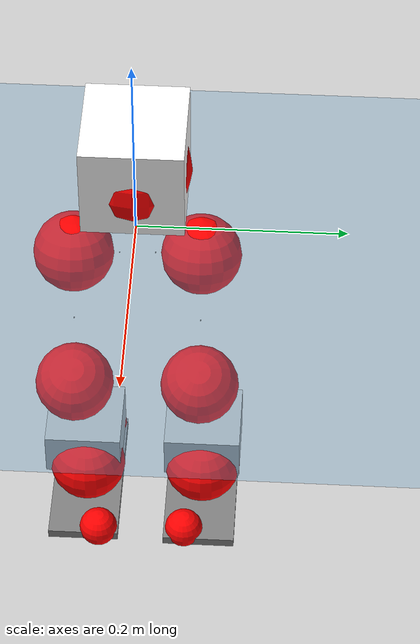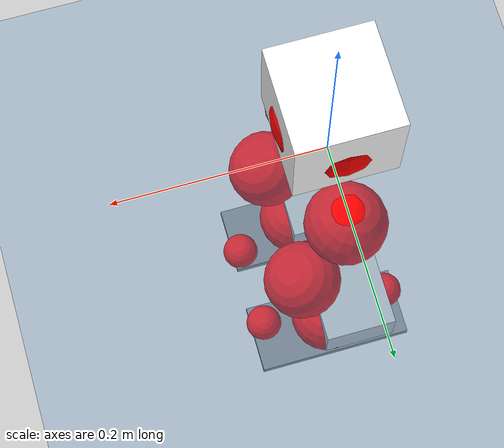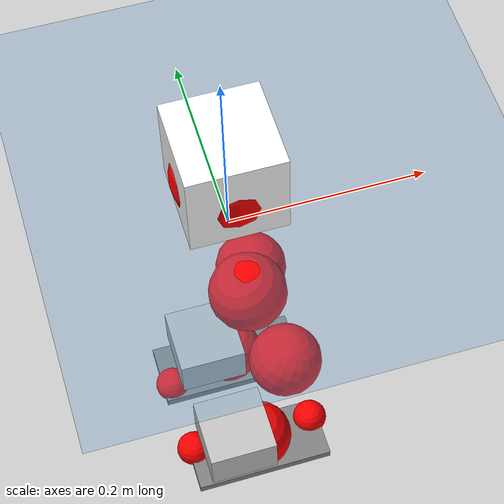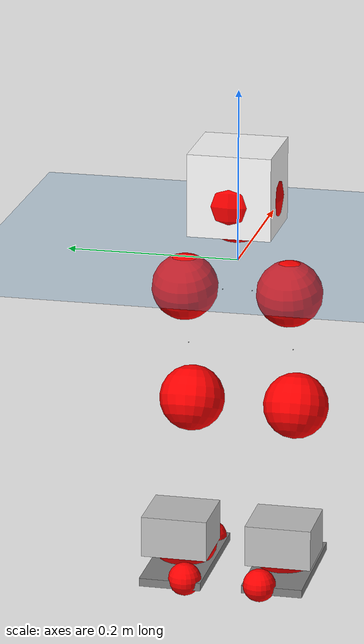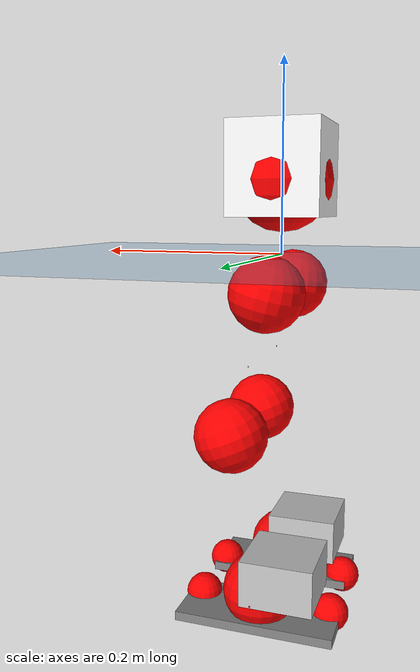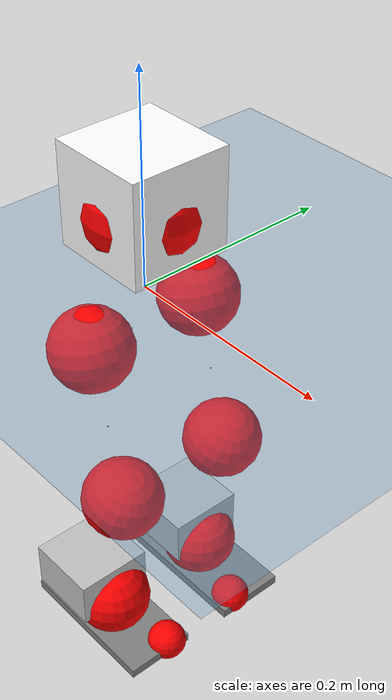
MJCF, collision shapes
<mujoco model="pi_12dof_release_v1">
  <compiler angle="radian" assetdir="assets" balanceinertia="true" inertiafromgeom="false"/>

  <option timestep="0.005" density="1.2" viscosity="2e-05"/>

  <size nkey="1"/>

  <visual>
    <quality shadowsize="8192"/>
    <map shadowclip="0.5"/>
  </visual>

  <default>
    <default class="/">
      <joint armature="0.01" damping="0.01" frictionloss="0.01"/>
      <geom contype="0" conaffinity="0" group="1" solref="-1000 -80"/>
      <site size="0.01 0.005 0.005" group="5"/>
      <general forcelimited="true" biastype="affine" gainprm="20" biasprm="0 -20 -0.5"/>
      <default class="foot">
        <geom size="0.0845 0.036 0.005" type="box" condim="6" group="4" priority="1" friction="0.9 0.2 0.2" solimp="0.015 1 0.005"/>
      </default>
      <default class="reward_collision_sphere">
        <geom group="5" rgba="1 0 0 1"/>
      </default>
    </default>
  </default>

  <asset>
    <texture type="skybox" colorspace="auto" name="//unnamed_texture_0" builtin="gradient" rgb1="0.95 0.95 0.95" rgb2="0.95 0.95 0.95" width="100" height="600"/>
    <texture type="2d" colorspace="auto" name="texplane" builtin="checker" rgb1="0.345 0.575 0.748" rgb2="0.345 0.575 0.748" markrgb="1 1 1" width="512" height="512"/>
    <material name="MatPlane" class="/" texture="texplane" texuniform="true" texrepeat="2 2" specular="0.9"/>
    <mesh name="baselink_1" class="/" file="baselink_1.STL"/>
    <mesh name="r_hip_pitch_link" class="/" file="r_hip_pitch_link.STL"/>
    <mesh name="r_hip_roll_link" class="/" file="r_hip_roll_link.STL"/>
    <mesh name="r_thigh_link" class="/" file="r_thigh_link.STL"/>
    <mesh name="r_calf_link" class="/" file="r_calf_link.STL"/>
    <mesh name="r_ankle_pitch_link" class="/" file="r_ankle_pitch_link.STL"/>
    <mesh name="r_ankle_roll_link" class="/" file="r_ankle_roll_link.STL"/>
    <mesh name="l_hip_pitch_link" class="/" file="l_hip_pitch_link.STL"/>
    <mesh name="l_hip_roll_link" class="/" file="l_hip_roll_link.STL"/>
    <mesh name="l_thigh_link" class="/" file="l_thigh_link.STL"/>
    <mesh name="l_calf_link" class="/" file="l_calf_link.STL"/>
    <mesh name="l_ankle_pitch_link" class="/" file="l_ankle_pitch_link.STL"/>
    <mesh name="l_ankle_roll_link" class="/" file="l_ankle_roll_link.STL"/>
  </asset>

  <worldbody>
    <geom name="floor" class="/" size="100 100 0.125" type="plane" group="0" material="MatPlane"/>
    <light name="toplight_shadow" class="/" pos="0 0 5" dir="0.0990148 0.0990148 -0.990148" type="directional" ambient="0.04 0.04 0.04" diffuse="0.55 0.55 0.55" specular="0.12 0.12 0.12"/>
    <light name="toplight_fill" class="/" pos="0 0 5" dir="0.0990148 0.0990148 -0.990148" type="directional" castshadow="false" ambient="0.04 0.04 0.04" diffuse="0.3 0.3 0.3" specular="0.08 0.08 0.08"/>
    <body name="trunk" pos="-0.000205163 0.00088112 -0.000282637" quat="1 -8.55896e-06 -0.000108923 0.000425748">
      <inertial pos="0.00308209 -0.00113995 0.0432909" quat="0.697917 0.00851246 0.0097288 0.716062" mass="1.91809" diaginertia="0.011265 0.0024584 0.00643315"/>
      <joint name="//unnamed_joint_0" type="free"/>
      <geom name="//unnamed_geom_1" class="/" type="mesh" density="0" rgba="1 1 1 1" mesh="baselink_1"/>
      <geom name="//unnamed_geom_2" class="/" size="0.0482578 0.0482578 0.0482578" pos="0 0 0.0874662" type="box" rgba="1 1 1 1"/>
      <geom name="//unnamed_geom_3" class="reward_collision_sphere" size="0.0530836" pos="0 0 0.0765329"/>
      <site name="imu" class="/" pos="0.00102214 -0.00128852 -0.0012756" size="0.00965156"/>
      <camera name="track" class="/" pos="0 -1.54328 0" quat="0.707107 0.707107 0 0" mode="trackcom"/>
      <camera name="ego_camera" class="/" pos="0.0772875 0 0.196799" quat="-0.5 -0.5 0.5 0.5"/>
      <body name="r_hip_pitch_link" pos="0.0012041 -0.0170963 -0.0358468" quat="0.99219 0.000154676 -0.124737 0.000106443">
        <inertial pos="0.00109765 -0.0430354 -0.000502861" quat="-0.02262 0.704937 -0.0263237 0.70842" mass="0.335113" diaginertia="0.000127342 2.71397e-05 0.000130818"/>
        <joint name="r_hip_pitch_joint" class="/" pos="0 0 0" axis="0.00136508 -0.999998 0.00146271" stiffness="0.00140486" range="-1.76636 1.23495" armature="0.00977379" damping="0.0135829" frictionloss="0.00969674"/>
        <geom name="//unnamed_geom_4" class="/" type="mesh" density="0" rgba="0.75294 0.75294 0.75294 1" mesh="r_hip_pitch_link"/>
        <geom name="//unnamed_geom_5" class="/" size="0.000482578 0.000482578 0.000482578" type="box" rgba="0.75294 0.75294 0.75294 1"/>
        <body name="r_hip_roll_link" pos="-3.8449e-05 -0.0438804 -0.000594366" quat="1 7.20526e-05 -2.21051e-06 0.000168457">
          <inertial pos="-0.00121081 0.000288355 -0.0674419" quat="0.705982 -0.0789145 -0.0833776 0.698864" mass="0.346551" diaginertia="0.000389908 7.65094e-05 0.000200672"/>
          <joint name="r_hip_roll_joint" class="/" pos="0 0 0" axis="-0.999998 0.00163892 -0.00135835" range="-0.118364 0.492716" armature="0.00928289" damping="0.0049657" frictionloss="0.00975931"/>
          <geom name="//unnamed_geom_6" class="/" type="mesh" density="0" rgba="0.75294 0.75294 0.75294 1" mesh="r_hip_roll_link"/>
          <geom name="//unnamed_geom_7" class="/" size="0.000482578 0.000482578 0.000482578" type="box" rgba="0.75294 0.75294 0.75294 1"/>
          <geom name="//unnamed_geom_8" class="reward_collision_sphere" size="0.0386062"/>
          <body name="r_thigh_link" pos="-4.24459e-05 -0.000760616 -0.0761046" quat="1 6.87869e-06 9.92924e-06 2.706e-05">
            <inertial pos="0.000647497 0.00131633 -0.0513835" quat="0.737149 0.67573 -9.24587e-05 -1.8581e-05" mass="0.102607" diaginertia="0.000146802 2.61926e-05 9.17158e-05"/>
            <joint name="r_thigh_joint" class="/" pos="0 0 0" axis="0.00210531 -0.00319238 -0.999993" range="-0.308581 0.585528" armature="0.0093859" damping="0" frictionloss="0.00978008"/>
            <geom name="//unnamed_geom_9" class="/" type="mesh" density="0" rgba="0.75294 0.75294 0.75294 1" mesh="r_thigh_link"/>
            <geom name="//unnamed_geom_10" class="/" size="0.000482578 0.000482578 0.000482578" type="box" rgba="0.75294 0.75294 0.75294 1"/>
            <body name="r_calf_link" pos="-0.00106796 -0.000771181 -0.0764757" quat="0.947709 -0.000149608 0.319135 1.97128e-05">
              <inertial pos="-0.000888978 -0.00102015 -0.0762345" quat="0.999981 -0.00338889 6.68355e-05 0.00521969" mass="0.734041" diaginertia="0.00414549 0.000957573 0.00027368"/>
              <joint name="r_calf_joint" class="/" pos="0 0 0" axis="0.00458192 -0.999986 0.00276699" range="-1.63671 0.641609" armature="0.00961655" damping="0.012499" frictionloss="0.00962822"/>
              <geom name="//unnamed_geom_11" class="/" type="mesh" density="0" rgba="0.75294 0.75294 0.75294 1" mesh="r_calf_link"/>
              <geom name="//unnamed_geom_12" class="/" size="0.000482578 0.000482578 0.000482578" type="box" rgba="0.75294 0.75294 0.75294 1"/>
              <geom name="//unnamed_geom_13" class="reward_collision_sphere" size="0.0386062"/>
              <body name="r_ankle_pitch_link" pos="0.000935543 0.00146882 -0.153534" quat="0.980067 4.05834e-06 -0.198667 -6.23044e-07">
                <inertial pos="0.00443359 0.00364439 -9.25299e-05" quat="0.00195022 0.707033 -0.00218679 0.707174" mass="0.158695" diaginertia="0.000361035 6.06317e-05 0.000187007"/>
                <joint name="r_ankle_pitch_joint" class="/" pos="0 0 0" axis="0.00159423 -0.999998 -0.000863309" range="-1.28085 0.499976" armature="0.00944938" damping="0.00872757" frictionloss="0.00955262"/>
                <geom name="//unnamed_geom_14" class="/" type="mesh" density="0" rgba="0.75294 0.75294 0.75294 1" mesh="r_ankle_pitch_link"/>
                <geom name="//unnamed_geom_15" class="/" size="0.0376411 0.0386062 0.0241289" type="box" rgba="0.75294 0.75294 0.75294 1"/>
                <body name="r_ankle_roll_link" pos="0.0782404 0.00388559 9.18881e-05" quat="1 -2.36584e-07 -0.000166107 4.29106e-05">
                  <inertial pos="-0.0236399 -0.000865777 -0.0161024" quat="0.55965 0.430404 0.43339 0.560104" mass="0.469371" diaginertia="0.0013259 0.000281035 0.000450302"/>
                  <joint name="r_ankle_roll_joint" class="/" pos="0 0 0" axis="-0.999994 -0.0024932 0.00241609" range="-0.13863 0.138666" armature="0.00980122" damping="0.00244893" frictionloss="0.00977671"/>
                  <geom name="//unnamed_geom_16" class="/" type="mesh" density="0" rgba="0.75294 0.75294 0.75294 1" mesh="r_ankle_roll_link"/>
                  <geom name="//unnamed_geom_17" class="/" type="mesh" rgba="0.75294 0.75294 0.75294 1" mesh="r_ankle_roll_link"/>
                  <geom name="right_foot" class="foot" size="0.0771287 0.0354662 0.00478883" pos="-0.0525555 0 -0.0481064"/>
                  <geom name="//unnamed_geom_19" class="reward_collision_sphere" size="0.0386062" pos="-0.051525 0 -0.0218666"/>
                  <geom name="//unnamed_geom_20" class="reward_collision_sphere" size="0.0193031" pos="0.0154575 0.0154328 -0.0437331"/>
                  <geom name="//unnamed_geom_21" class="reward_collision_sphere" size="0.0193031" pos="-0.12366 0.0154328 -0.0437331"/>
                  <site name="right_foot" class="foot" pos="-0.0525555 0 -0.0481064" size="0.00965156"/>
                </body>
              </body>
            </body>
          </body>
        </body>
      </body>
      <body name="l_hip_pitch_link" pos="-0.000720377 0.0170395 -0.0359956" quat="0.99219 0.000156106 -0.124734 -0.000125928">
        <inertial pos="0.00142342 0.0410012 -0.00114668" quat="-0.037566 0.704617 0.0279194 0.708042" mass="0.347989" diaginertia="0.00014857 2.90148e-05 0.000156018"/>
        <joint name="l_hip_pitch_joint" class="/" pos="0 0 0" axis="2.88225e-05 1 0.000155578" range="-1.2484 1.74576" armature="0.0097516" damping="0.0101" frictionloss="0.0096204"/>
        <geom name="//unnamed_geom_22" class="/" type="mesh" density="0" rgba="0.75294 0.75294 0.75294 1" mesh="l_hip_pitch_link"/>
        <geom name="//unnamed_geom_23" class="/" size="0.000482578 0.000482578 0.000482578" type="box" rgba="0.75294 0.75294 0.75294 1"/>
        <body name="l_hip_roll_link" pos="0.000319538 0.0440153 0.000317845" quat="1 4.01997e-05 -4.39082e-05 1.77564e-05">
          <inertial pos="-0.000669026 0.000682163 -0.0665582" quat="0.699547 -0.0744018 -0.0744256 0.706795" mass="0.347898" diaginertia="0.000391176 7.52427e-05 0.00020035"/>
          <joint name="l_hip_roll_joint" class="/" pos="0 0 0" axis="-0.999985 -0.00156986 0.00518317" range="-0.502953 0.121081" armature="0.00985761" damping="0.00422199" frictionloss="0.0100263"/>
          <geom name="//unnamed_geom_24" class="/" type="mesh" density="0" rgba="0.75294 0.75294 0.75294 1" mesh="l_hip_roll_link"/>
          <geom name="//unnamed_geom_25" class="/" size="0.000482578 0.000482578 0.000482578" type="box" rgba="0.75294 0.75294 0.75294 1"/>
          <geom name="//unnamed_geom_26" class="reward_collision_sphere" size="0.0386062"/>
          <body name="l_thigh_link" pos="-0.000393733 -0.000279261 -0.0762167" quat="1 0.000206208 -7.82256e-06 -0.000215479">
            <inertial pos="0.000614401 -0.00208215 -0.0524755" quat="0.674814 0.737987 -0.000592989 0.00111177" mass="0.101298" diaginertia="0.000147253 2.62482e-05 9.15845e-05"/>
            <joint name="l_thigh_joint" class="/" pos="0 0 0" axis="-0.000104572 -0.000179927 -1" range="-0.596088 0.306152" armature="0.0100376" damping="0.00392597" frictionloss="0.00974691"/>
            <geom name="//unnamed_geom_27" class="/" type="mesh" density="0" rgba="0.75294 0.75294 0.75294 1" mesh="l_thigh_link"/>
            <geom name="//unnamed_geom_28" class="/" size="0.000482578 0.000482578 0.000482578" type="box" rgba="0.75294 0.75294 0.75294 1"/>
            <body name="l_calf_link" pos="-0.000797028 -3.00303e-05 -0.0761377" quat="0.947604 -0.00020819 0.319446 -0.00035506">
              <inertial pos="0.00015287 0.00224581 -0.0771082" quat="0.999981 0.00331286 0.000143594 0.00524129" mass="0.737118" diaginertia="0.00412727 0.000968303 0.000277652"/>
              <joint name="l_calf_joint" class="/" pos="0 0 0" axis="-0.00200357 0.999998 -0.000280583" range="-0.657949 1.64933" armature="0.00994115" damping="0.00879038" frictionloss="0.0098399"/>
              <geom name="//unnamed_geom_29" class="/" type="mesh" density="0" rgba="0.75294 0.75294 0.75294 1" mesh="l_calf_link"/>
              <geom name="//unnamed_geom_30" class="/" size="0.000482578 0.000482578 0.000482578" type="box" rgba="0.75294 0.75294 0.75294 1"/>
              <geom name="//unnamed_geom_31" class="reward_collision_sphere" size="0.0386062"/>
              <body name="l_ankle_pitch_link" pos="0.00142104 0.000340913 -0.152924" quat="0.980059 1.48022e-05 -0.198708 -7.73721e-05">
                <inertial pos="0.00503945 4.58574e-05 -0.000436296" quat="-0.00309934 0.70688 0.00196695 0.707324" mass="0.159777" diaginertia="0.000360351 6.07728e-05 0.00019039"/>
                <joint name="l_ankle_pitch_joint" class="/" pos="0 0 0" axis="0.000933064 1 0.00025247" range="-0.511655 1.29998" armature="0.00973434" damping="0.00447741" frictionloss="0.0100716"/>
                <geom name="//unnamed_geom_32" class="/" type="mesh" density="0" rgba="0.75294 0.75294 0.75294 1" mesh="l_ankle_pitch_link"/>
                <geom name="//unnamed_geom_33" class="/" size="0.0376411 0.0386062 0.0241289" type="box" rgba="0.75294 0.75294 0.75294 1"/>
                <body name="l_ankle_roll_link" pos="0.077298 0.000206851 -0.000377865" quat="1 3.71838e-05 -1.44588e-05 2.75507e-05">
                  <inertial pos="-0.0240487 -0.000594289 -0.0157792" quat="0.560181 0.430784 0.434001 0.558807" mass="0.461836" diaginertia="0.00132317 0.000280508 0.000444441"/>
                  <joint name="l_ankle_roll_joint" class="/" pos="0 0 0" axis="-0.999999 -0.00102766 2.02582e-05" stiffness="0.000314502" range="-0.145786 0.152468" armature="0.00953806" damping="0.00459204" frictionloss="0.00965201"/>
                  <geom name="//unnamed_geom_34" class="/" type="mesh" density="0" rgba="0.75294 0.75294 0.75294 1" mesh="l_ankle_roll_link"/>
                  <geom name="//unnamed_geom_35" class="/" type="mesh" rgba="0.75294 0.75294 0.75294 1" mesh="l_ankle_roll_link"/>
                  <geom name="left_foot" class="foot" size="0.0825021 0.0361931 0.00480989" pos="-0.0525555 0 -0.0481064"/>
                  <geom name="//unnamed_geom_37" class="reward_collision_sphere" size="0.0386062" pos="-0.051525 0 -0.0218666"/>
                  <geom name="//unnamed_geom_38" class="reward_collision_sphere" size="0.0193031" pos="0.0154575 -0.0154328 -0.0437331"/>
                  <geom name="//unnamed_geom_39" class="reward_collision_sphere" size="0.0193031" pos="-0.12366 -0.0154328 -0.0437331"/>
                  <site name="left_foot" class="foot" pos="-0.0525555 0 -0.0481064" size="0.00965156"/>
                </body>
              </body>
            </body>
          </body>
        </body>
      </body>
    </body>
  </worldbody>

  <contact>
    <pair class="/" geom1="floor" geom2="right_foot" name="//unnamed_contact_1"/>
    <pair class="/" geom1="floor" geom2="left_foot" name="//unnamed_contact_0"/>
  </contact>

  <actuator>
    <general name="r_hip_pitch_joint" class="/" joint="r_hip_pitch_joint" forcerange="-20.4721 20.4721" gainprm="19.6122" biasprm="0 -19.6122 -0.470053"/>
    <general name="r_hip_roll_joint" class="/" joint="r_hip_roll_joint" forcerange="-20.7175 20.7175" gainprm="19.6122" biasprm="0 -19.6122 -0.470053"/>
    <general name="r_thigh_joint" class="/" joint="r_thigh_joint" forcerange="-20.3605 20.3605" gainprm="19.6122" biasprm="0 -19.6122 -0.470053"/>
    <general name="r_calf_joint" class="/" joint="r_calf_joint" forcerange="-20.0362 20.0362" gainprm="19.6122" biasprm="0 -19.6122 -0.470053"/>
    <general name="r_ankle_pitch_joint" class="/" joint="r_ankle_pitch_joint" forcerange="-20.2534 20.2534" gainprm="19.6122" biasprm="0 -19.6122 -0.470053"/>
    <general name="r_ankle_roll_joint" class="/" joint="r_ankle_roll_joint" forcerange="-19.6865 19.6865" gainprm="19.6122" biasprm="0 -19.6122 -0.470053"/>
    <general name="l_hip_pitch_joint" class="/" joint="l_hip_pitch_joint" forcerange="-19.856 19.856" gainprm="19.6122" biasprm="0 -19.6122 -0.470053"/>
    <general name="l_hip_roll_joint" class="/" joint="l_hip_roll_joint" forcerange="-20.3947 20.3947" gainprm="19.6122" biasprm="0 -19.6122 -0.470053"/>
    <general name="l_thigh_joint" class="/" joint="l_thigh_joint" forcerange="-20.1669 20.1669" gainprm="19.6122" biasprm="0 -19.6122 -0.470053"/>
    <general name="l_calf_joint" class="/" joint="l_calf_joint" forcerange="-20.7416 20.7416" gainprm="19.6122" biasprm="0 -19.6122 -0.470053"/>
    <general name="l_ankle_pitch_joint" class="/" joint="l_ankle_pitch_joint" forcerange="-20.2894 20.2894" gainprm="19.6122" biasprm="0 -19.6122 -0.470053"/>
    <general name="l_ankle_roll_joint" class="/" joint="l_ankle_roll_joint" forcerange="-20.8711 20.8711" gainprm="19.6122" biasprm="0 -19.6122 -0.470053"/>
  </actuator>

  <sensor>
    <gyro site="imu" name="imu_angular_velocity"/>
    <velocimeter site="imu" name="imu_linear_velocity"/>
    <framelinvel objtype="site" objname="left_foot" name="left_foot_global_linear_velocity"/>
    <framelinvel objtype="site" objname="right_foot" name="right_foot_global_linear_velocity"/>
  </sensor>

  <keyframe>
    <key name="home" qpos="0 0 0.291 1 0 0 0 0.4 0 0 -0.8 0.4 0 -0.4 0 0 0.8 -0.4 0"/>
  </keyframe>
</mujoco>
